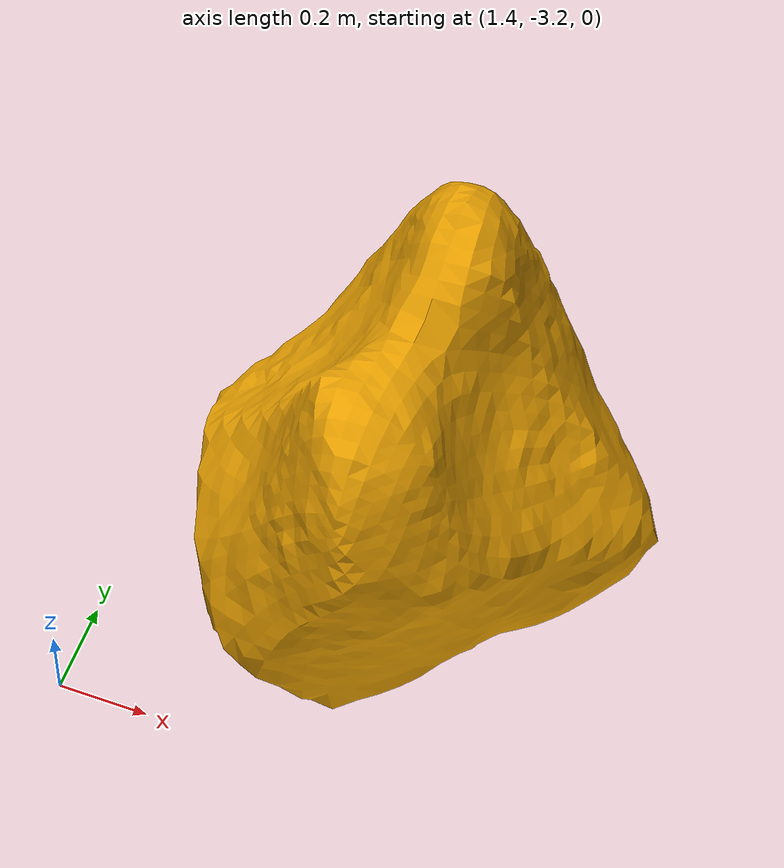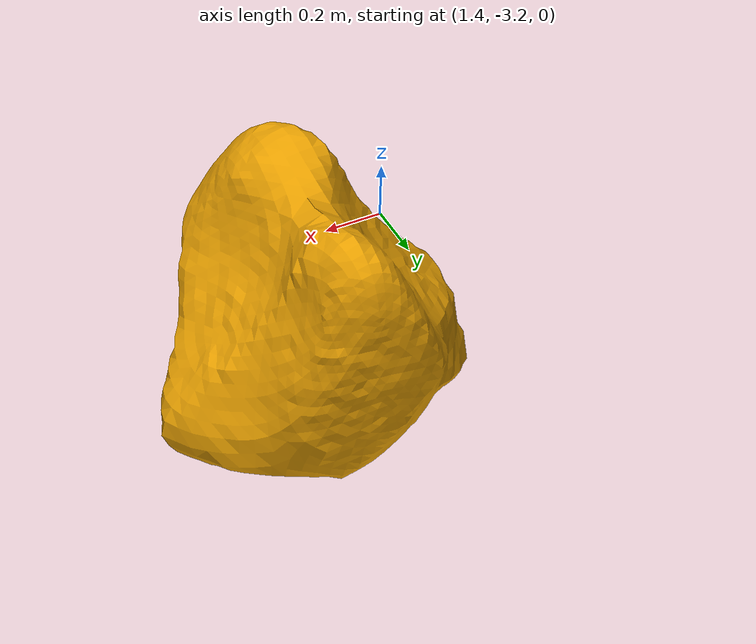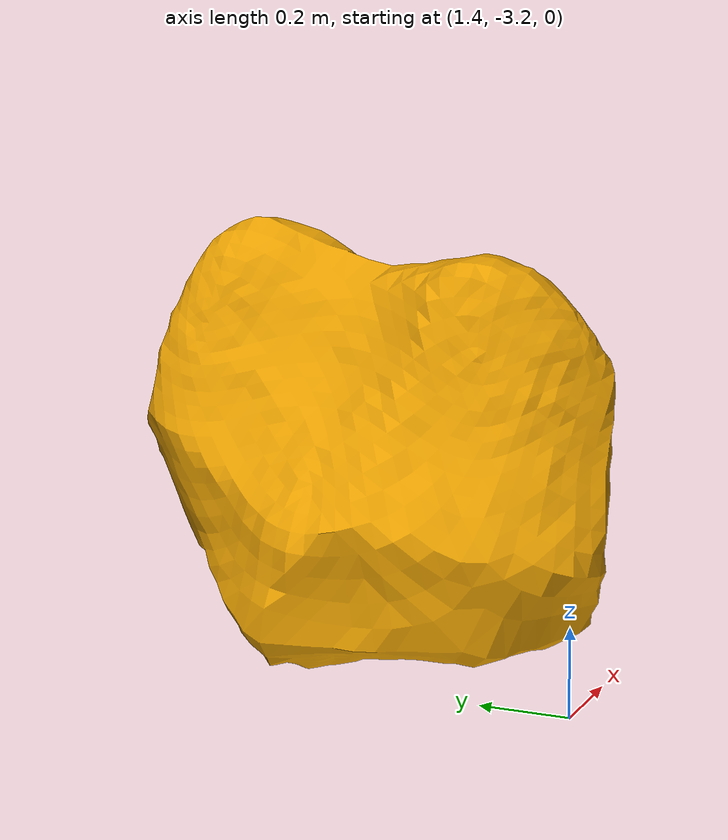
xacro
<robot name="robot">
  <link name="easy_world_rock_004_link">
    <inertial>
      <origin xyz="0 0 0" rpy="0 0 0" />
      <mass value="1" />
      <inertia ixx="1" ixy="0" ixz="0" iyy="1" iyz="0" izz="1" />
    </inertial>
    <visual>
      <origin xyz="0 0 0" rpy="0 0 0" />
      <geometry>
        <mesh filename="package://custom_gazebo_world/world_type/easy_world/meshes/easy_world_rock_004.dae" />
      </geometry>
    </visual>
    <collision>
      <origin xyz="0 0 0" rpy="0 0 0" />
      <geometry>
        <mesh filename="package://custom_gazebo_world/world_type/easy_world/meshes/easy_world_rock_004.dae" />
      </geometry>
    </collision>
  </link>

  <gazebo> <static>true</static></gazebo>
</robot>
